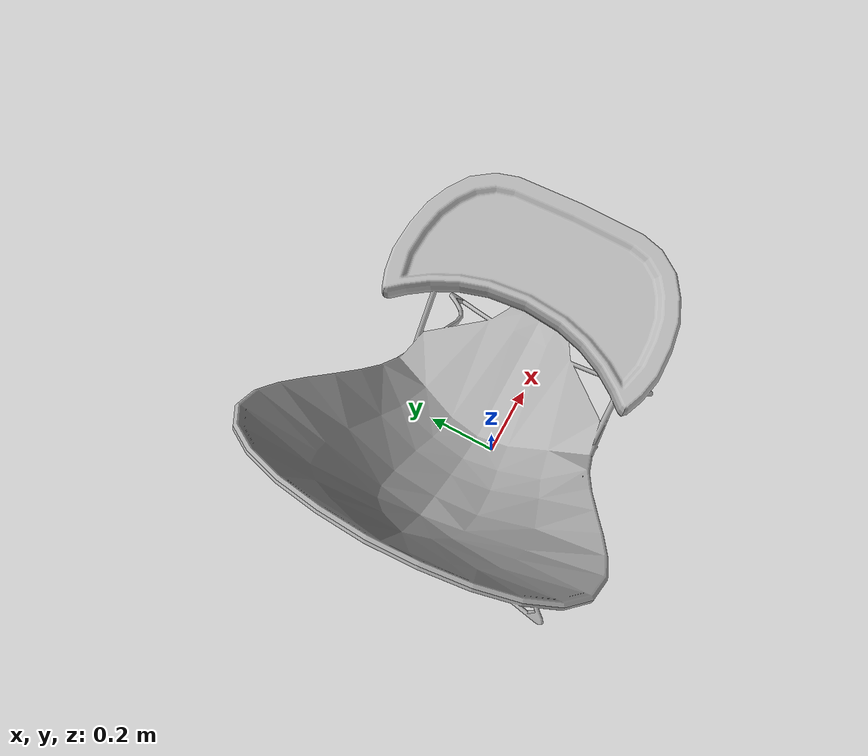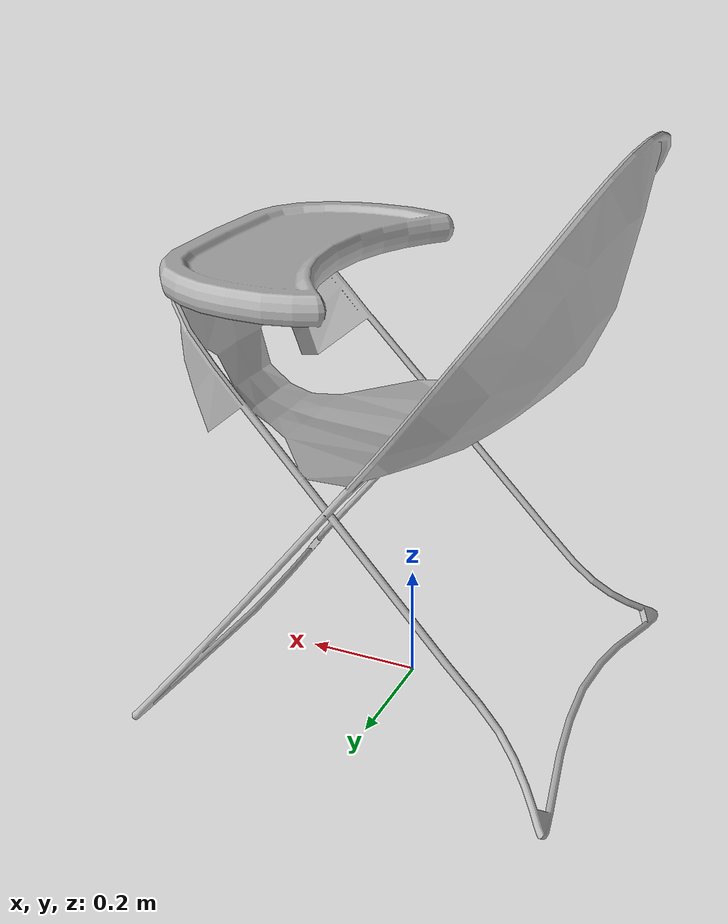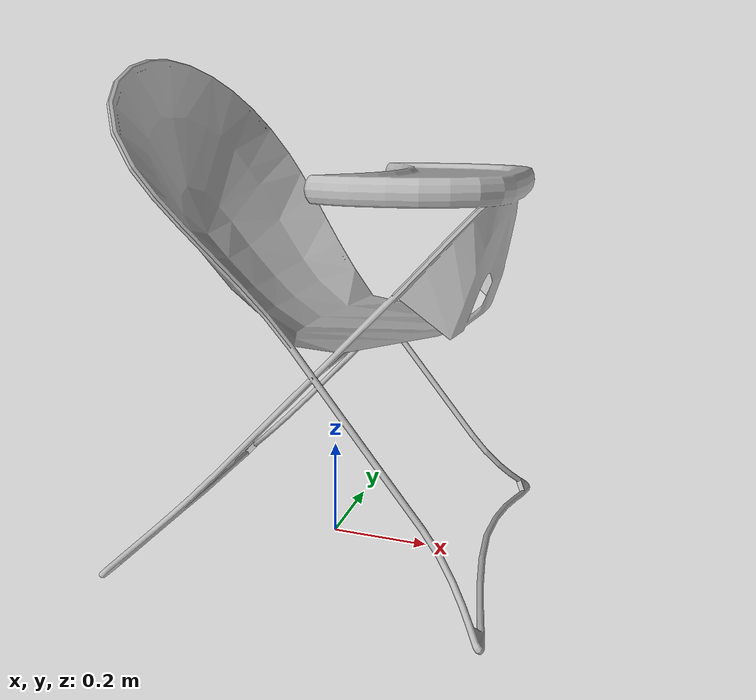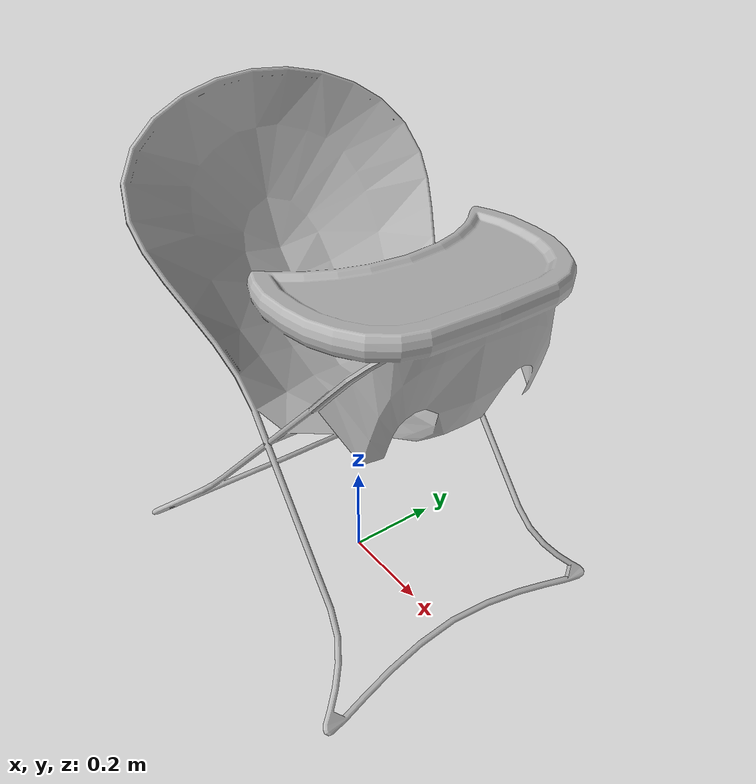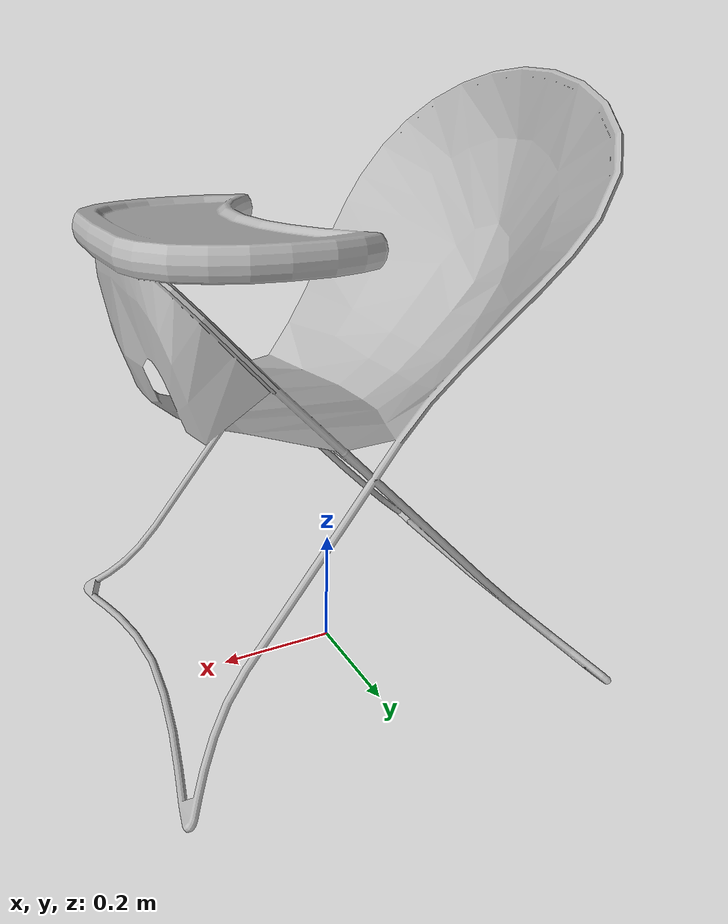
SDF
<?xml version='1.0'?>
<sdf version='1.4'>
  <model name='336'>
    <pose>0 0 0 0 0 0</pose>
    <static>true</static>
    <link name='link'>
      <collision name='collision'>
        <pose>0 0 0 0 0 0</pose>
        <geometry>
          <box>
            <size>0.754297 0.7 2</size>
          </box>
        </geometry>
      </collision>
      <visual name='visual'>
        <pose>0 0 0 0 0 0</pose>
        <geometry>
          <mesh><uri>model://336/336.dae</uri></mesh>
        </geometry>
      </visual>
    </link>
  </model>
</sdf>
